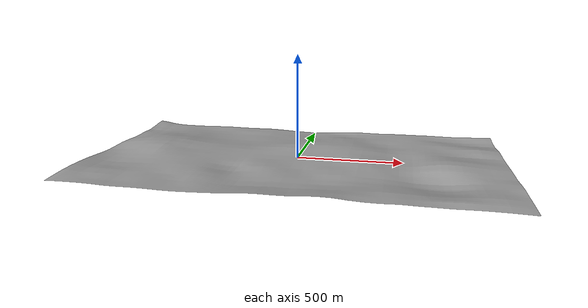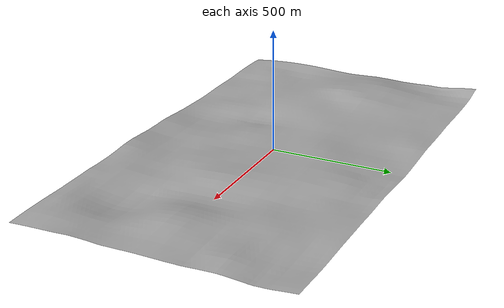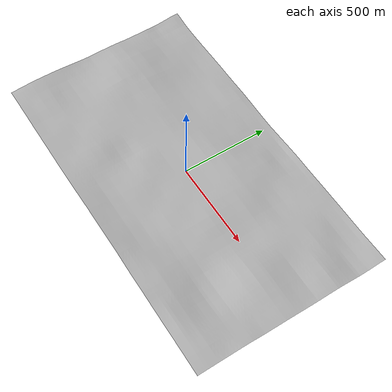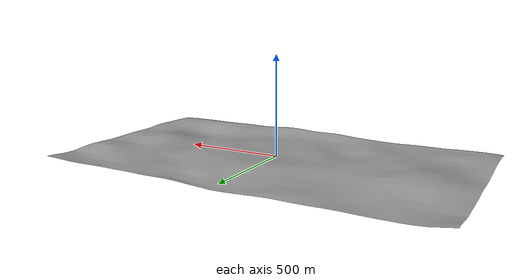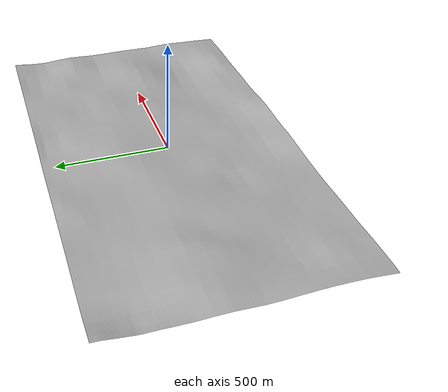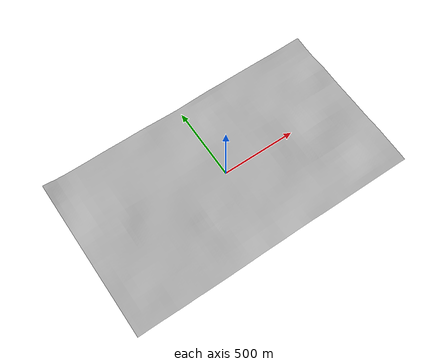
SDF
<?xml version="1.0" ?>
<sdf version="1.4">
  <model name="p5">
	<static>true</static>
	<link name="link">
	  <pose>0 0 0.6 0 0 0</pose>
	    <collision name="my_collision">
		<geometry>
                   <mesh><uri>model://p5/untitled.dae</uri></mesh>
		 </geometry>
	    </collision>

	    <visual name="my_visual">
		<geometry>
                   <mesh><uri>model://p5/untitled.dae</uri></mesh>
		 </geometry>
	    </visual>
	</link>
</model>
</sdf>
